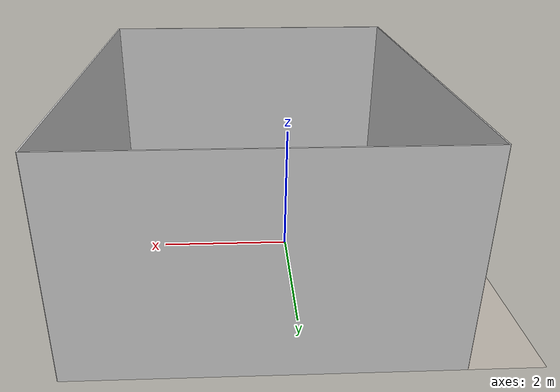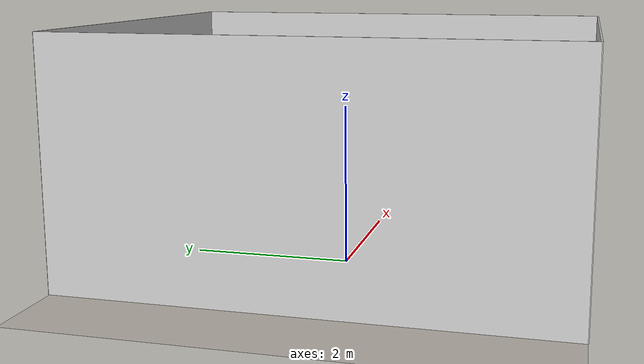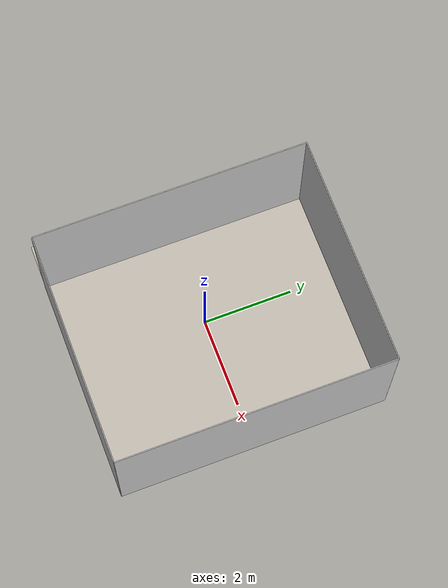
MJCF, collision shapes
<mujoco model="table_arena">
  <asset>
    <texture builtin="gradient" height="256" rgb1=".9 .9 1." rgb2=".2 .3 .4" type="skybox" width="256"/>
    <texture file="../../textures/tile_grigia_caldera_porcelain_floor.png" type="2d" name="texplane"/>

    <material name="floorplane" reflectance="0.0" shininess="0.0"
	      specular="0.0" texrepeat="3 3" texture="texplane" texuniform="true"/>
    <!-- ceramic table texture and material-->
    <texture file="../../textures/martin_novak_wood_table.png" type="cube" name="tex-table"/>
    <material name="table_texture" reflectance="0.0" shininess="0.0" specular="0.2" texrepeat="1 1" texture="tex-table" />
    <!-- steel legs -->
    <texture file="../../textures/martin_novak_wood_table.png" type="cube" name="tex-table-legs"/>
    <material name="table_legs" reflectance="0.8" shininess="0.8" texrepeat="1 1" texture="tex-table-legs" />
    <!-- plaster walls -->
    <texture file="../../textures/smooth_light_gray_plaster.png" type="2d" name="tex-wall"/>

    <material name="walls_mat" reflectance="0.0" shininess="0.3" specular="0.8" texrepeat="3 3" texture="tex-wall" texuniform="true" />
    <!-- added table texture and material for domain randomization -->
    <texture  name="textable" builtin="flat" height="512" width="512" rgb1="0.8 0.8 0.8" rgb2="0.8 0.8 0.8"/>
    <material name="table_mat" texture="textable" />

    <texture file="kitchen_background/kitchen_background.png" name="tex-kitchen_background" type="2d"/>
    <material name="kitchen_background" reflectance="0.5" texrepeat="1 1" texture="tex-kitchen_background" texuniform="false"/>
    <mesh file="kitchen_background/kitchen_background.obj" name="kitchen_background_vis" scale="0.01 0.01 0.01"/>

    <texture file="kitchen_background_pot/kitchen_background_pot.png" name="tex-kitchen_background_pot" type="2d"/>
    <material name="kitchen_background_pot" reflectance="0.5" texrepeat="1 1" texture="tex-kitchen_background_pot" texuniform="false"/>
    <mesh file="kitchen_background_pot/kitchen_background_pot.obj" name="kitchen_background_pot_vis" scale="0.01 0.01 0.01"/>

    <material name="kitchen_background_hot_pot" reflectance="0.5" rgba="0.4 0.4 0.4 1.0" />
    <mesh file="kitchen_background_hot_pot/kitchen_background_hot_pot.obj" name="kitchen_background_hot_pot_vis" scale="0.01 0.01 0.01"/>

    <texture file="kitchen_background_stove/kitchen_background_stove.png" name="tex-kitchen_background_stove" type="2d"/>
    <material name="kitchen_background_stove" reflectance="0.5" texrepeat="1 1" texture="tex-kitchen_background_stove" texuniform="false"/>
    <mesh file="kitchen_background_stove/kitchen_background_stove.obj" name="kitchen_background_stove_vis" scale="0.01 0.01 0.01"/>

    <texture file="fridge/metal.png" name="tex-kitchen_background_fridge" type="2d"/>
    <material name="kitchen_background_fridge" reflectance="0.9" texrepeat="1 1" texture="tex-kitchen_background_fridge" texuniform="false"/>
    <mesh file="fridge/fridge.obj" name="kitchen_background_fridge_vis" scale="0.01 0.01 0.01"/>

  </asset>
  <worldbody>
    <!-- Floor -->
    <geom condim="3" group="0" material="floorplane" name="floor" pos="0 0 0" size="3 3 .125" type="plane"/>
    <geom pos="-1.65 0.0 0.90" quat="0 0 0 1" type="mesh" mesh="kitchen_background_stove_vis" conaffinity="0" contype="0" group="0" material="kitchen_background_stove"/>
    <geom pos="-1.50 0.23 0.93" quat="0.30 0 0 0.90" type="mesh" mesh="kitchen_background_hot_pot_vis" conaffinity="0" contype="0" group="0" material="kitchen_background_hot_pot"/>
    <geom pos="-1.85 -0.85 0.90" quat="0 0 0 1" type="mesh" mesh="kitchen_background_pot_vis" conaffinity="0" contype="0" group="0" material="kitchen_background_pot"/>
    <geom pos="-1.75 -2.4 0" quat="0 0 0 1" type="mesh" mesh="kitchen_background_fridge_vis" conaffinity="0" contype="0" group="0" material="kitchen_background_fridge"/>
    <geom pos="-1.65 0.0 0.0" quat="0 0 0 1" type="mesh" mesh="kitchen_background_vis" conaffinity="0" contype="0" group="0" material="kitchen_background"/>

    <light name="light_kitchen" diffuse=".8 .8 .8" dir="0 0 -1" directional="true" pos="-1.75 0 1.6" specular="0.8 0.8 0.8" castshadow="false"/>

    <geom pos="0.5 3 1.5" quat="0.7071 0.7071 0 0" size="2.5 1.5 0.01" type="box" conaffinity="0" contype="0" group="0" name="wall_left_visual" material="walls_mat"/>
    <geom pos="0.5 -3 1.5" quat="0.7071 -0.7071 0 0" size="2.5 1.5 0.01" type="box" conaffinity="0" contype="0" group="0" name="wall_right_visual" material="walls_mat"/>
    <geom pos="-2 0 1.5" quat="0.5 0.5 0.5 0.5" size="3 1.5 0.01" type="box" conaffinity="0" contype="0" group="0" name="wall_rear_visual" material="walls_mat"/>
    <geom pos="3 0 1.5" quat="0.5 0.5 -0.5 -0.5" size="3 1.5 0.01" type="box" conaffinity="0" contype="0" group="0" name="wall_front_visual" material="walls_mat"/>

    <light name="light1" diffuse=".8 .8 .8" dir="0 -.15 -1" directional="false" pos="1 1 4.0" specular="0.3 0.3 0.3" castshadow="false"/>
    <light name="light2" diffuse=".8 .8 .8" dir="0 -.15 -1" directional="false" pos="-3. -3. 4.0" specular="0.3 0.3 0.3" castshadow="false"/>

    <!-- front view -->
    <camera mode="fixed" name="frontview" pos="1.0 0 1.45" quat="0.56 0.43 0.43 0.56"/>
    <!-- bird view -->
    <camera mode="fixed" name="birdview" pos="-0.2 0 3.0" quat="0.7071 0 0 0.7071"/>
    <!-- agent view -->
    <camera mode="fixed" name="agentview" pos="0.5 0 1.35" quat="0.653 0.271 0.271 0.653"/>

    <!-- side view -->
    <camera mode="fixed" name="sideview" pos="-0.05651774593317116 1.2761224129427358 1.4879572214102434" quat="0.009905065491771751 0.006877963156909582 0.5912228352893879 0.806418094001364" />
  </worldbody>
</mujoco>
